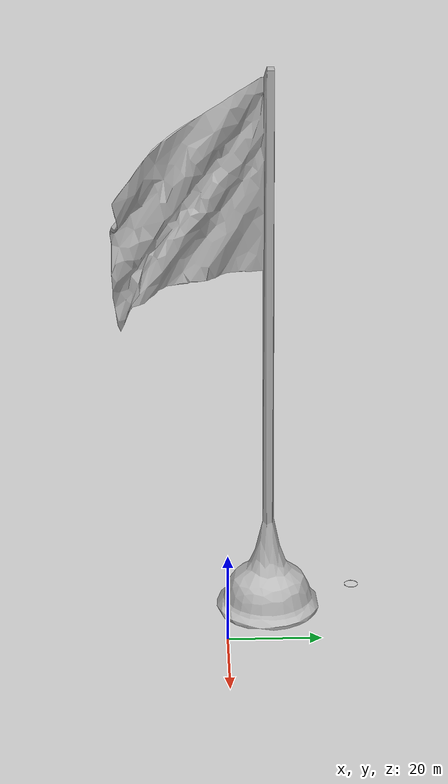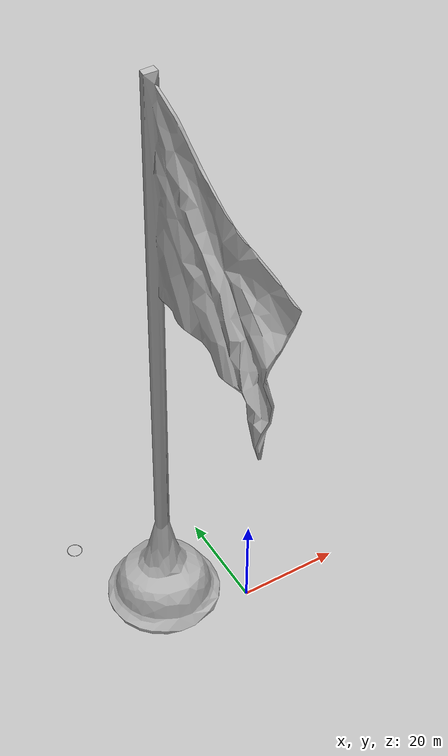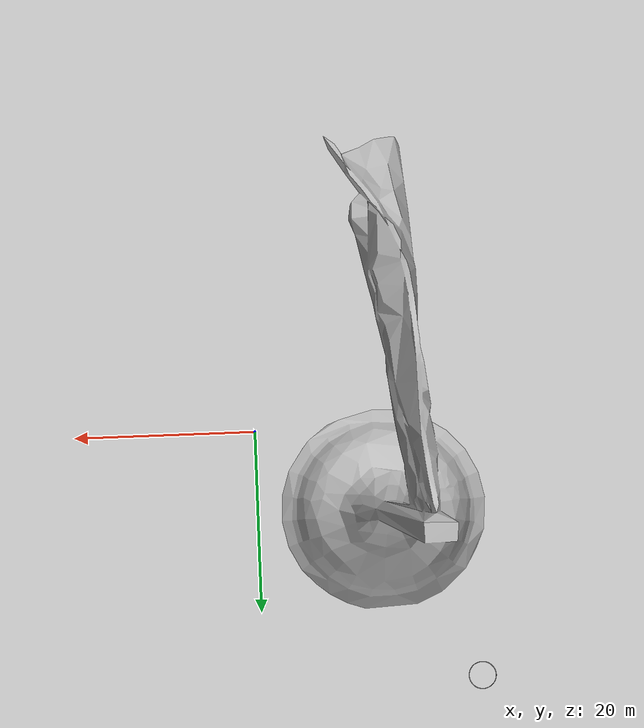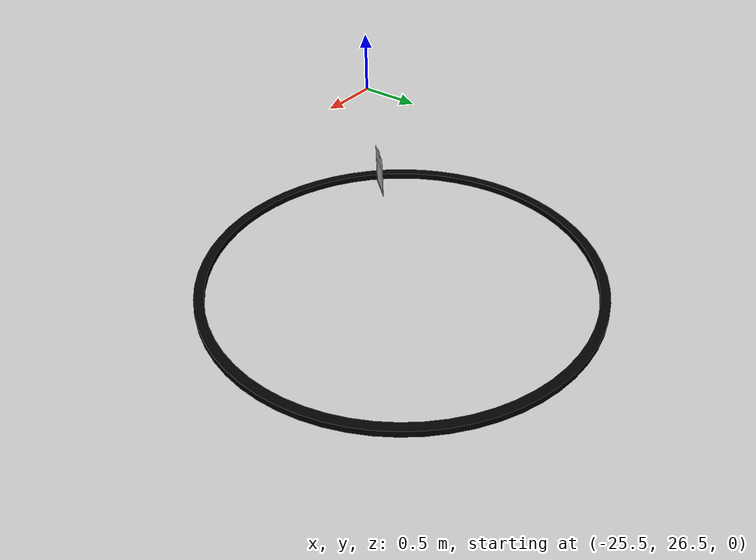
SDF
<sdf version="1.6">
 <world name="default">
  <scene><background>202 150 66 1</background><ambient>0.4 0.4 0.4 1</ambient><shadows>1</shadows></scene>
  <physics name="default_physics" default="0" type="ode">
   <max_step_size>0.0185</max_step_size>
   <real_time_factor>1</real_time_factor>
   <real_time_update_rate>1000</real_time_update_rate>
  </physics>
  <light name="directional_light_1" type="directional">
   <pose>0 20 20 0.1 0.1 0</pose>
   <diffuse>1 1 1 1</diffuse>
   <specular>1 1 1 1</specular>
   <attenuation><range>300</range></attenuation>
   <direction>0.1 0.1 -1</direction>
   <cast_shadows>0</cast_shadows>
  </light>
  <light name="sun" type="directional">
   <pose>0 0 10 0 -0 0</pose>
   <diffuse>0.8 0.8 0.8 1</diffuse>
   <specular>0.2 0.2 0.2 1</specular>
   <attenuation>
    <range>1000</range>
    <constant>0.9</constant>
    <linear>0.01</linear>
    <quadratic>0.001</quadratic>
   </attenuation>
   <direction>-0.5 0.1 -0.9</direction>
  </light>
  <gravity>0 0 -3.711</gravity>
  <magnetic_field>6e-06 2.3e-05 -4.2e-05</magnetic_field>
  <atmosphere type="adiabatic"/>
  <spherical_coordinates>
   <surface_model>EARTH_WGS84</surface_model>
   <latitude_deg>0</latitude_deg>
   <longitude_deg>0</longitude_deg>
   <elevation>0</elevation>
   <heading_deg>0</heading_deg>
  </spherical_coordinates>
  <model name="aruco_visual_marker_0_pad">
   <link name="aruco_visual_marker_0::marker">
    <visual name="visual">
     <geometry><box><size>0.1778 0.1778 0.001</size></box></geometry>
     <material>
      <script>
       <uri>model://aruco_visual_marker_0/materials/scripts</uri>
       <uri>model://aruco_visual_marker_0/materials/textures</uri>
       <name>ArucoVisualMarker0/Marker</name>
      </script>
      <ambient>1 1 1 1</ambient>
      <diffuse>1 1 1 1</diffuse>
      <specular>0 0 0 1</specular>
      <emissive>1 1 1 0</emissive>
      <shader type="vertex"><normal_map>__default__</normal_map></shader>
     </material>
    </visual>
    <collision name="collision"><geometry><box><size>0.1778 0.1778 0.001</size></box></geometry></collision>
   </link>
   <static>1</static>
   <link name="marker_pad_large">
    <pose frame="aruco_visual_marker_0::marker">-0.035 0 -1e-05 0 -0 0</pose>
    <visual name="visual">
     <geometry><box><size>0.297 0.21 0.001</size></box></geometry>
     <material>
      <lighting>1</lighting>
      <script><uri>file://media/materials/scripts/gazebo.material</uri><name>Gazebo/White</name></script>
      <ambient>0.3 0.3 0.3 1</ambient>
      <diffuse>0.7 0.7 0.7 1</diffuse>
      <specular>0.01 0.01 0.01 1</specular>
      <emissive>1 1 1 0</emissive>
      <shader type="vertex"><normal_map>__default__</normal_map></shader>
     </material>
    </visual>
    <collision name="collision">
     <geometry><box><size>0.297 0.21 0.001</size></box></geometry>
     <surface>
      <friction>
       <ode><mu>1</mu><mu2>1</mu2><fdir1>0 0 0</fdir1><slip1>0</slip1><slip2>0</slip2></ode>
       <torsional>
        <coefficient>1</coefficient>
        <patch_radius>0</patch_radius>
        <surface_radius>0</surface_radius>
        <use_patch_radius>1</use_patch_radius>
        <ode><slip>0</slip></ode>
       </torsional>
      </friction>
      <bounce><restitution_coefficient>0</restitution_coefficient><threshold>1e+06</threshold></bounce>
      <contact>
       <collide_without_contact>0</collide_without_contact>
       <collide_without_contact_bitmask>1</collide_without_contact_bitmask>
       <collide_bitmask>1</collide_bitmask>
       <ode>
        <soft_cfm>0</soft_cfm>
        <soft_erp>0.2</soft_erp>
        <kp>1e+13</kp>
        <kd>1</kd>
        <max_vel>0.01</max_vel>
        <min_depth>0</min_depth>
       </ode>
       <bullet>
        <split_impulse>1</split_impulse>
        <split_impulse_penetration_threshold>-0.01</split_impulse_penetration_threshold>
        <soft_cfm>0</soft_cfm>
        <soft_erp>0.2</soft_erp>
        <kp>1e+13</kp>
        <kd>1</kd>
       </bullet>
      </contact>
     </surface>
    </collision>
   </link>
   <link name="marker_num">
    <pose frame="marker_pad_large">-0.14 0 1e-05 0 -0 0</pose>
    <visual name="visual">
     <geometry><box><size>0.05 0.05 0.001</size></box></geometry>
     <material>
      <script>
       <uri>model://aruco_visual_marker_0_pad/materials/scripts</uri>
       <uri>model://aruco_visual_marker_0_pad/materials/textures</uri>
       <name>ArucoVisualMarker0/Num</name>
      </script>
      <ambient>1 1 1 1</ambient>
      <diffuse>1 1 1 1</diffuse>
      <specular>0 0 0 1</specular>
      <emissive>1 1 1 0</emissive>
      <shader type="vertex"><normal_map>__default__</normal_map></shader>
     </material>
    </visual>
    <collision name="collision">
     <geometry><box><size>0.05 0.05 0.001</size></box></geometry>
     <surface>
      <friction>
       <ode><mu>1</mu><mu2>1</mu2><fdir1>0 0 0</fdir1><slip1>0</slip1><slip2>0</slip2></ode>
       <torsional>
        <coefficient>1</coefficient>
        <patch_radius>0</patch_radius>
        <surface_radius>0</surface_radius>
        <use_patch_radius>1</use_patch_radius>
        <ode><slip>0</slip></ode>
       </torsional>
      </friction>
      <bounce><restitution_coefficient>0</restitution_coefficient><threshold>1e+06</threshold></bounce>
      <contact>
       <collide_without_contact>0</collide_without_contact>
       <collide_without_contact_bitmask>1</collide_without_contact_bitmask>
       <collide_bitmask>1</collide_bitmask>
       <ode>
        <soft_cfm>0</soft_cfm>
        <soft_erp>0.2</soft_erp>
        <kp>1e+13</kp>
        <kd>1</kd>
        <max_vel>0.01</max_vel>
        <min_depth>0</min_depth>
       </ode>
       <bullet>
        <split_impulse>1</split_impulse>
        <split_impulse_penetration_threshold>-0.01</split_impulse_penetration_threshold>
        <soft_cfm>0</soft_cfm>
        <soft_erp>0.2</soft_erp>
        <kp>1e+13</kp>
        <kd>1</kd>
       </bullet>
      </contact>
     </surface>
    </collision>
   </link>
   <joint name="marker_JOINT_marker_pad_large" type="revolute">
    <parent>aruco_visual_marker_0::marker</parent>
    <child>marker_pad_large</child>
    <axis>
     <xyz>0 0 1</xyz>
     <limit><upper>0</upper><lower>0</lower></limit>
     <use_parent_model_frame>0</use_parent_model_frame>
     <dynamics><spring_reference>0</spring_reference><spring_stiffness>0</spring_stiffness></dynamics>
    </axis>
   </joint>
   <joint name="pad_large_JOINT_marker_num" type="revolute">
    <parent>marker_pad_large</parent>
    <child>marker_num</child>
    <axis>
     <xyz>0 0 1</xyz>
     <limit><upper>0</upper><lower>0</lower></limit>
     <use_parent_model_frame>0</use_parent_model_frame>
     <dynamics><spring_reference>0</spring_reference><spring_stiffness>0</spring_stiffness></dynamics>
    </axis>
   </joint>
   <static>1</static>
   <pose>-24.1126 27.7301 0.219829 -2.44354 1.53475 -3.14159</pose>
  </model>
  <model name="flag">
   <static>1</static>
   <link name="link">
    <collision name="collision">
     <geometry><mesh><uri>model://flag/meshes/flag.dae</uri><scale>1 1 1</scale></mesh></geometry>
     <surface>
      <contact><collide_bitmask>65535</collide_bitmask></contact>
      <friction><ode><mu>100</mu><mu2>50</mu2></ode></friction>
     </surface>
    </collision>
    <visual name="visual">
     <geometry><mesh><uri>model://flag/meshes/flag.dae</uri><scale>1 1 1</scale></mesh></geometry>
    </visual>
   </link>
   <pose>-20.0962 15.331 -0.815546 0 -0 0</pose>
  </model>
  <model name="takeoff_zone">
   <static>1</static>
   <link name="link">
    <collision name="collision">
     <geometry><mesh><uri>model://takeoff_zone/meshes/takeoff_zone.dae</uri><scale>1 1 1</scale></mesh></geometry>
     <surface>
      <contact><collide_bitmask>65535</collide_bitmask></contact>
      <friction><ode><mu>100</mu><mu2>50</mu2></ode></friction>
     </surface>
    </collision>
    <visual name="visual">
     <geometry><mesh><uri>model://takeoff_zone/meshes/takeoff_zone.dae</uri><scale>1 1 1</scale></mesh></geometry>
    </visual>
   </link>
   <pose>-24.1998 27.8583 -0.692887 0 -0 0</pose>
  </model>
 </world>
</sdf>
